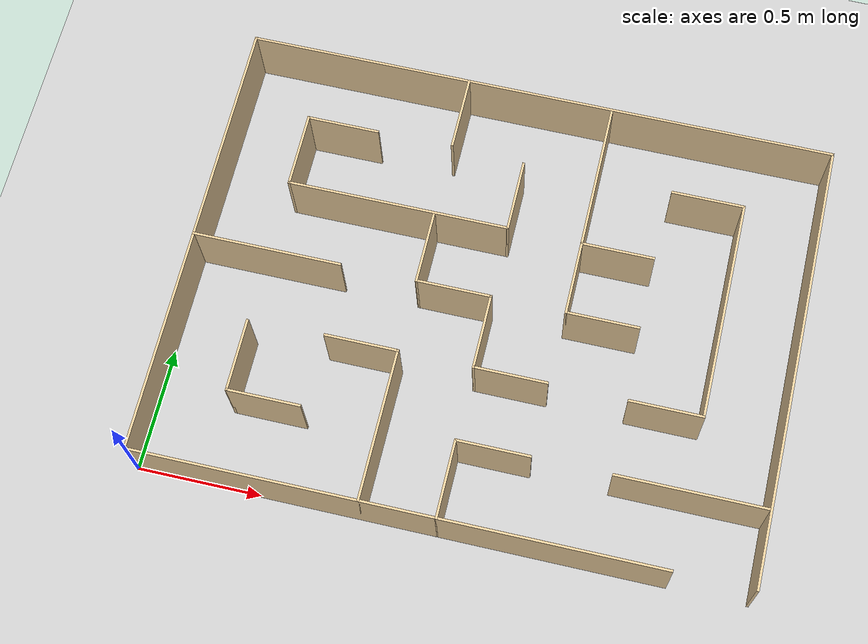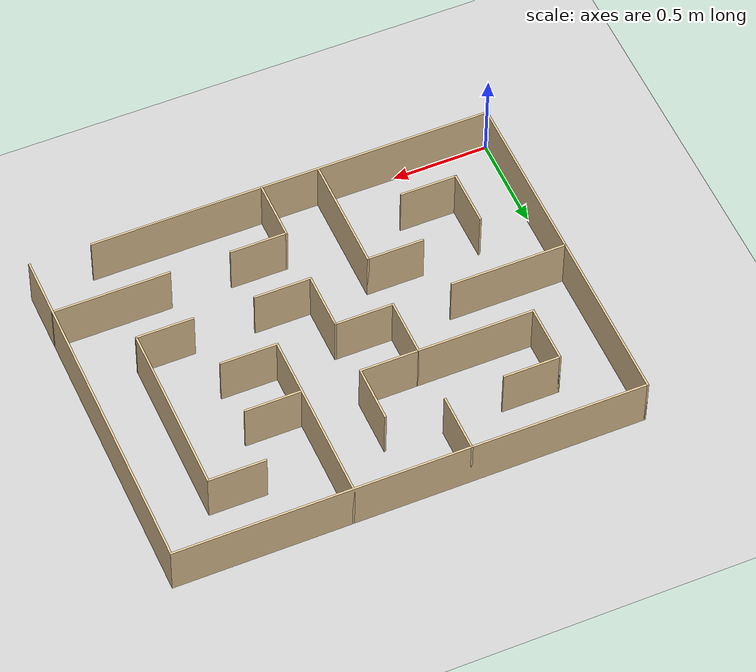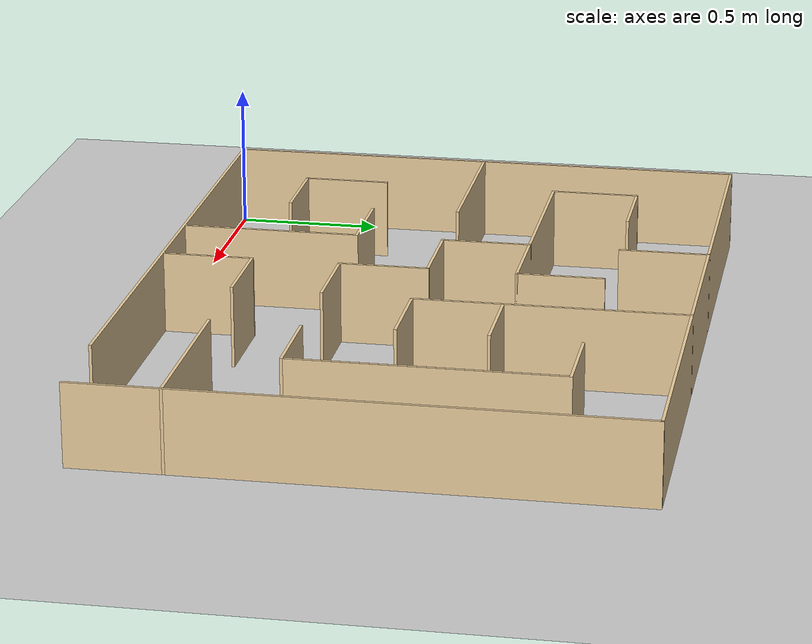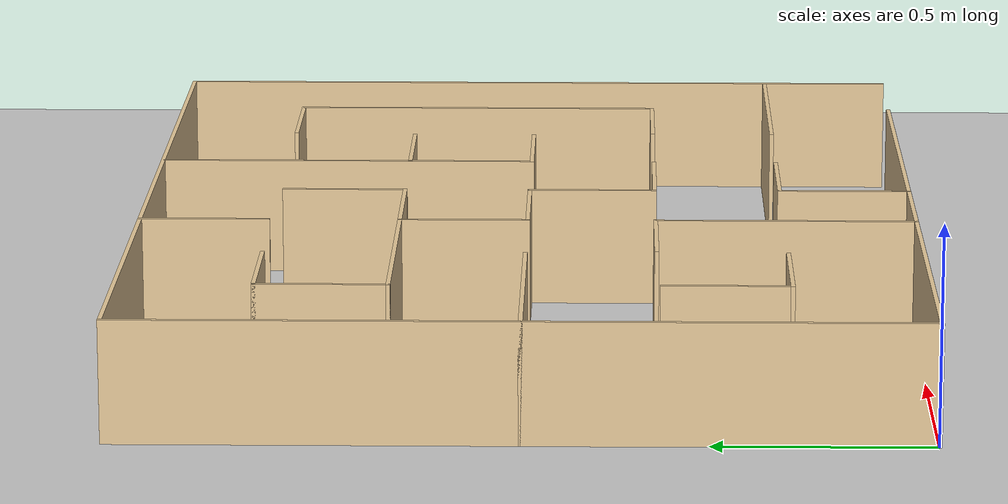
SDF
<?xml version="1.0" ?>
<sdf version="1.4">
  <world name="default">
    <scene>
      <ambient>0.5 0.5 0.5 1.0</ambient>
      <shadows>0</shadows>
    </scene>
    <include>
      <uri>model://ground_plane</uri>
    </include>
    <include>
      <uri>model://sun</uri>
    </include>

    <model name='newMap1'>
    <pose frame=''>1.21 0.91 0 0 -0 0</pose>
    <link name='Wall_0'>
      <collision name='Wall_0_Collision'>
        <geometry>
          <box>
            <size>0.31 0.01 0.28</size>
          </box>
        </geometry>
        <pose frame=''>0 0 0.14 0 -0 0</pose>
      </collision>
      <visual name='Wall_0_Visual'>
        <pose frame=''>0 0 0.14 0 -0 0</pose>
        <geometry>
          <box>
            <size>0.31 0.01 0.28</size>
          </box>
        </geometry>
        <material>
          <script>
            <uri>file://media/materials/scripts/gazebo.material</uri>
            <name>Gazebo/Grey</name>
          </script>
          <ambient>0.921569 0.807843 0.615686 1</ambient>
        </material>
        <meta>
          <layer>0</layer>
        </meta>
      </visual>
      <pose frame=''>-0.3 0.76 0 0 0 -1.5708</pose>
    </link>
    <link name='Wall_11'>
      <collision name='Wall_11_Collision'>
        <geometry>
          <box>
            <size>2.43 0.01 0.28</size>
          </box>
        </geometry>
        <pose frame=''>0 0 0.14 0 -0 0</pose>
      </collision>
      <visual name='Wall_11_Visual'>
        <pose frame=''>0 0 0.14 0 -0 0</pose>
        <geometry>
          <box>
            <size>2.43 0.01 0.28</size>
          </box>
        </geometry>
        <material>
          <script>
            <uri>file://media/materials/scripts/gazebo.material</uri>
            <name>Gazebo/Grey</name>
          </script>
          <ambient>0.921569 0.807843 0.615686 1</ambient>
        </material>
        <meta>
          <layer>0</layer>
        </meta>
      </visual>
      <pose frame=''>0 0.91 0 0 -0 0</pose>
    </link>
    <link name='Wall_13'>
      <collision name='Wall_13_Collision'>
        <geometry>
          <box>
            <size>1.83 0.01 0.28</size>
          </box>
        </geometry>
        <pose frame=''>0 0 0.14 0 -0 0</pose>
      </collision>
      <visual name='Wall_13_Visual'>
        <pose frame=''>0 0 0.14 0 -0 0</pose>
        <geometry>
          <box>
            <size>1.83 0.01 0.28</size>
          </box>
        </geometry>
        <material>
          <script>
            <uri>file://media/materials/scripts/gazebo.material</uri>
            <name>Gazebo/Grey</name>
          </script>
          <ambient>0.921569 0.807843 0.615686 1</ambient>
        </material>
        <meta>
          <layer>0</layer>
        </meta>
      </visual>
      <pose frame=''>-1.21 0 0 0 -0 1.5708</pose>
    </link>
    <link name='Wall_15'>
      <collision name='Wall_15_Collision'>
        <geometry>
          <box>
            <size>2.11 0.01 0.28</size>
          </box>
        </geometry>
        <pose frame=''>0 0 0.14 0 -0 0</pose>
      </collision>
      <visual name='Wall_15_Visual'>
        <pose frame=''>0 0 0.14 0 -0 0</pose>
        <geometry>
          <box>
            <size>2.11 0.01 0.28</size>
          </box>
        </geometry>
        <material>
          <script>
            <uri>file://media/materials/scripts/gazebo.material</uri>
            <name>Gazebo/Grey</name>
          </script>
          <ambient>0.921569 0.807843 0.615686 1</ambient>
        </material>
        <meta>
          <layer>0</layer>
        </meta>
      </visual>
      <pose frame=''>-0.16 -0.91 0 0 -0 0</pose>
    </link>
    <link name='Wall_17'>
      <collision name='Wall_17_Collision'>
        <geometry>
          <box>
            <size>0.3 0.01 0.28</size>
          </box>
        </geometry>
        <pose frame=''>0 0 0.14 0 -0 0</pose>
      </collision>
      <visual name='Wall_17_Visual'>
        <pose frame=''>0 0 0.14 0 -0 0</pose>
        <geometry>
          <box>
            <size>0.3 0.01 0.28</size>
          </box>
        </geometry>
        <material>
          <script>
            <uri>file://media/materials/scripts/gazebo.material</uri>
            <name>Gazebo/Grey</name>
          </script>
          <ambient>0.921569 0.807843 0.615686 1</ambient>
        </material>
        <meta>
          <layer>0</layer>
        </meta>
      </visual>
      <pose frame=''>-0.445 -0.3 0 0 -0 0</pose>
    </link>
    <link name='Wall_2'>
      <collision name='Wall_2_Collision'>
        <geometry>
          <box>
            <size>0.61 0.01 0.28</size>
          </box>
        </geometry>
        <pose frame=''>0 0 0.14 0 -0 0</pose>
      </collision>
      <visual name='Wall_2_Visual'>
        <pose frame=''>0 0 0.14 0 -0 0</pose>
        <geometry>
          <box>
            <size>0.61 0.01 0.28</size>
          </box>
        </geometry>
        <material>
          <script>
            <uri>file://media/materials/scripts/gazebo.material</uri>
            <name>Gazebo/Grey</name>
          </script>
          <ambient>0.921569 0.807843 0.615686 1</ambient>
        </material>
        <meta>
          <layer>0</layer>
        </meta>
      </visual>
      <pose frame=''>-0.91 0 0 0 -0 0</pose>
    </link>
    <link name='Wall_21'>
      <collision name='Wall_21_Collision'>
        <geometry>
          <box>
            <size>0.62 0.01 0.28</size>
          </box>
        </geometry>
        <pose frame=''>0 0 0.14 0 -0 0</pose>
      </collision>
      <visual name='Wall_21_Visual'>
        <pose frame=''>0 0 0.14 0 -0 0</pose>
        <geometry>
          <box>
            <size>0.62 0.01 0.28</size>
          </box>
        </geometry>
        <material>
          <script>
            <uri>file://media/materials/scripts/gazebo.material</uri>
            <name>Gazebo/Grey</name>
          </script>
          <ambient>0.921569 0.807843 0.615686 1</ambient>
        </material>
        <meta>
          <layer>0</layer>
        </meta>
      </visual>
      <pose frame=''>-0.3 -0.605 0 0 0 -1.5708</pose>
    </link>
    <link name='Wall_23'>
      <collision name='Wall_23_Collision'>
        <geometry>
          <box>
            <size>0.3 0.01 0.28</size>
          </box>
        </geometry>
        <pose frame=''>0 0 0.14 0 -0 0</pose>
      </collision>
      <visual name='Wall_23_Visual'>
        <pose frame=''>0 0 0.14 0 -0 0</pose>
        <geometry>
          <box>
            <size>0.3 0.01 0.28</size>
          </box>
        </geometry>
        <material>
          <script>
            <uri>file://media/materials/scripts/gazebo.material</uri>
            <name>Gazebo/Grey</name>
          </script>
          <ambient>0.921569 0.807843 0.615686 1</ambient>
        </material>
        <meta>
          <layer>0</layer>
        </meta>
      </visual>
      <pose frame=''>0.445 0 0 0 -0 0</pose>
    </link>
    <link name='Wall_25'>
      <collision name='Wall_25_Collision'>
        <geometry>
          <box>
            <size>0.3 0.01 0.28</size>
          </box>
        </geometry>
        <pose frame=''>0 0 0.14 0 -0 0</pose>
      </collision>
      <visual name='Wall_25_Visual'>
        <pose frame=''>0 0 0.14 0 -0 0</pose>
        <geometry>
          <box>
            <size>0.3 0.01 0.28</size>
          </box>
        </geometry>
        <material>
          <script>
            <uri>file://media/materials/scripts/gazebo.material</uri>
            <name>Gazebo/Grey</name>
          </script>
          <ambient>0.921569 0.807843 0.615686 1</ambient>
        </material>
        <meta>
          <layer>0</layer>
        </meta>
      </visual>
      <pose frame=''>0.445 0.3 0 0 -0 0</pose>
    </link>
    <link name='Wall_28'>
      <collision name='Wall_28_Collision'>
        <geometry>
          <box>
            <size>0.92 0.01 0.28</size>
          </box>
        </geometry>
        <pose frame=''>0 0 0.14 0 -0 0</pose>
      </collision>
      <visual name='Wall_28_Visual'>
        <pose frame=''>0 0 0.14 0 -0 0</pose>
        <geometry>
          <box>
            <size>0.92 0.01 0.28</size>
          </box>
        </geometry>
        <material>
          <script>
            <uri>file://media/materials/scripts/gazebo.material</uri>
            <name>Gazebo/Grey</name>
          </script>
          <ambient>0.921569 0.807843 0.615686 1</ambient>
        </material>
        <meta>
          <layer>0</layer>
        </meta>
      </visual>
      <pose frame=''>0.3 0.455 0 0 0 -1.5708</pose>
    </link>
    <link name='Wall_30'>
      <collision name='Wall_30_Collision'>
        <geometry>
          <box>
            <size>0.3 0.01 0.28</size>
          </box>
        </geometry>
        <pose frame=''>0 0 0.14 0 -0 0</pose>
      </collision>
      <visual name='Wall_30_Visual'>
        <pose frame=''>0 0 0.14 0 -0 0</pose>
        <geometry>
          <box>
            <size>0.3 0.01 0.28</size>
          </box>
        </geometry>
        <material>
          <script>
            <uri>file://media/materials/scripts/gazebo.material</uri>
            <name>Gazebo/Grey</name>
          </script>
          <ambient>0.921569 0.807843 0.615686 1</ambient>
        </material>
        <meta>
          <layer>0</layer>
        </meta>
      </visual>
      <pose frame=''>0.755 -0.3 0 0 -0 3.14159</pose>
    </link>
    <link name='Wall_32'>
      <collision name='Wall_32_Collision'>
        <geometry>
          <box>
            <size>0.91 0.01 0.28</size>
          </box>
        </geometry>
        <pose frame=''>0 0 0.14 0 -0 0</pose>
      </collision>
      <visual name='Wall_32_Visual'>
        <pose frame=''>0 0 0.14 0 -0 0</pose>
        <geometry>
          <box>
            <size>0.91 0.01 0.28</size>
          </box>
        </geometry>
        <material>
          <script>
            <uri>file://media/materials/scripts/gazebo.material</uri>
            <name>Gazebo/Grey</name>
          </script>
          <ambient>0.921569 0.807843 0.615686 1</ambient>
        </material>
        <meta>
          <layer>0</layer>
        </meta>
      </visual>
      <pose frame=''>0.9 0.15 0 0 0 -1.5708</pose>
    </link>
    <link name='Wall_34'>
      <collision name='Wall_34_Collision'>
        <geometry>
          <box>
            <size>0.3 0.01 0.28</size>
          </box>
        </geometry>
        <pose frame=''>0 0 0.14 0 -0 0</pose>
      </collision>
      <visual name='Wall_34_Visual'>
        <pose frame=''>0 0 0.14 0 -0 0</pose>
        <geometry>
          <box>
            <size>0.3 0.01 0.28</size>
          </box>
        </geometry>
        <material>
          <script>
            <uri>file://media/materials/scripts/gazebo.material</uri>
            <name>Gazebo/Grey</name>
          </script>
          <ambient>0.921569 0.807843 0.615686 1</ambient>
        </material>
        <meta>
          <layer>0</layer>
        </meta>
      </visual>
      <pose frame=''>0.755 0.6 0 0 -0 0</pose>
    </link>
    <link name='Wall_36'>
      <collision name='Wall_36_Collision'>
        <geometry>
          <box>
            <size>0.61 0.01 0.28</size>
          </box>
        </geometry>
        <pose frame=''>0 0 0.14 0 -0 0</pose>
      </collision>
      <visual name='Wall_36_Visual'>
        <pose frame=''>0 0 0.14 0 -0 0</pose>
        <geometry>
          <box>
            <size>0.61 0.01 0.28</size>
          </box>
        </geometry>
        <material>
          <script>
            <uri>file://media/materials/scripts/gazebo.material</uri>
            <name>Gazebo/Grey</name>
          </script>
          <ambient>0.921569 0.807843 0.615686 1</ambient>
        </material>
        <meta>
          <layer>0</layer>
        </meta>
      </visual>
      <pose frame=''>0.91 -0.6 0 0 -0 0</pose>
    </link>
    <link name='Wall_40'>
      <collision name='Wall_40_Collision'>
        <geometry>
          <box>
            <size>0.3 0.01 0.28</size>
          </box>
        </geometry>
        <pose frame=''>0 0 0.14 0 -0 0</pose>
      </collision>
      <visual name='Wall_40_Visual'>
        <pose frame=''>0 0 0.14 0 -0 0</pose>
        <geometry>
          <box>
            <size>0.3 0.01 0.28</size>
          </box>
        </geometry>
        <material>
          <script>
            <uri>file://media/materials/scripts/gazebo.material</uri>
            <name>Gazebo/Grey</name>
          </script>
          <ambient>0.921569 0.807843 0.615686 1</ambient>
        </material>
        <meta>
          <layer>0</layer>
        </meta>
      </visual>
      <pose frame=''>0.145 -0.6 0 0 -0 0</pose>
    </link>
    <link name='Wall_42'>
      <collision name='Wall_42_Collision'>
        <geometry>
          <box>
            <size>0.32 0.01 0.28</size>
          </box>
        </geometry>
        <pose frame=''>0 0 0.14 0 -0 0</pose>
      </collision>
      <visual name='Wall_42_Visual'>
        <pose frame=''>0 0 0.14 0 -0 0</pose>
        <geometry>
          <box>
            <size>0.32 0.01 0.28</size>
          </box>
        </geometry>
        <material>
          <script>
            <uri>file://media/materials/scripts/gazebo.material</uri>
            <name>Gazebo/Grey</name>
          </script>
          <ambient>0.921569 0.807843 0.615686 1</ambient>
        </material>
        <meta>
          <layer>0</layer>
        </meta>
      </visual>
      <pose frame=''>0 -0.755 0 0 -0 1.5708</pose>
    </link>
    <link name='Wall_44'>
      <collision name='Wall_44_Collision'>
        <geometry>
          <box>
            <size>0.3 0.01 0.28</size>
          </box>
        </geometry>
        <pose frame=''>0 0 0.14 0 -0 0</pose>
      </collision>
      <visual name='Wall_44_Visual'>
        <pose frame=''>0 0 0.14 0 -0 0</pose>
        <geometry>
          <box>
            <size>0.3 0.01 0.28</size>
          </box>
        </geometry>
        <material>
          <script>
            <uri>file://media/materials/scripts/gazebo.material</uri>
            <name>Gazebo/Grey</name>
          </script>
          <ambient>0.921569 0.807843 0.615686 1</ambient>
        </material>
        <meta>
          <layer>0</layer>
        </meta>
      </visual>
      <pose frame=''>0.145 -0.3 0 0 -0 0</pose>
    </link>
    <link name='Wall_46'>
      <collision name='Wall_46_Collision'>
        <geometry>
          <box>
            <size>0.31 0.01 0.28</size>
          </box>
        </geometry>
        <pose frame=''>0 0 0.14 0 -0 0</pose>
      </collision>
      <visual name='Wall_46_Visual'>
        <pose frame=''>0 0 0.14 0 -0 0</pose>
        <geometry>
          <box>
            <size>0.31 0.01 0.28</size>
          </box>
        </geometry>
        <material>
          <script>
            <uri>file://media/materials/scripts/gazebo.material</uri>
            <name>Gazebo/Grey</name>
          </script>
          <ambient>0.921569 0.807843 0.615686 1</ambient>
        </material>
        <meta>
          <layer>0</layer>
        </meta>
      </visual>
      <pose frame=''>0 -0.15 0 0 0 -1.5708</pose>
    </link>
    <link name='Wall_48'>
      <collision name='Wall_48_Collision'>
        <geometry>
          <box>
            <size>0.31 0.01 0.28</size>
          </box>
        </geometry>
        <pose frame=''>0 0 0.14 0 -0 0</pose>
      </collision>
      <visual name='Wall_48_Visual'>
        <pose frame=''>0 0 0.14 0 -0 0</pose>
        <geometry>
          <box>
            <size>0.31 0.01 0.28</size>
          </box>
        </geometry>
        <material>
          <script>
            <uri>file://media/materials/scripts/gazebo.material</uri>
            <name>Gazebo/Grey</name>
          </script>
          <ambient>0.921569 0.807843 0.615686 1</ambient>
        </material>
        <meta>
          <layer>0</layer>
        </meta>
      </visual>
      <pose frame=''>-0.15 0 0 0 -0 0</pose>
    </link>
    <link name='Wall_5'>
      <collision name='Wall_5_Collision'>
        <geometry>
          <box>
            <size>0.3 0.01 0.28</size>
          </box>
        </geometry>
        <pose frame=''>0 0 0.14 0 -0 0</pose>
      </collision>
      <visual name='Wall_5_Visual'>
        <pose frame=''>0 0 0.14 0 -0 0</pose>
        <geometry>
          <box>
            <size>0.3 0.01 0.28</size>
          </box>
        </geometry>
        <material>
          <script>
            <uri>file://media/materials/scripts/gazebo.material</uri>
            <name>Gazebo/Grey</name>
          </script>
          <ambient>0.921569 0.807843 0.615686 1</ambient>
        </material>
        <meta>
          <layer>0</layer>
        </meta>
      </visual>
      <pose frame=''>-0.9 -0.455 0 0 -0 1.5708</pose>
    </link>
    <link name='Wall_50'>
      <collision name='Wall_50_Collision'>
        <geometry>
          <box>
            <size>0.31 0.01 0.28</size>
          </box>
        </geometry>
        <pose frame=''>0 0 0.14 0 -0 0</pose>
      </collision>
      <visual name='Wall_50_Visual'>
        <pose frame=''>0 0 0.14 0 -0 0</pose>
        <geometry>
          <box>
            <size>0.31 0.01 0.28</size>
          </box>
        </geometry>
        <material>
          <script>
            <uri>file://media/materials/scripts/gazebo.material</uri>
            <name>Gazebo/Grey</name>
          </script>
          <ambient>0.921569 0.807843 0.615686 1</ambient>
        </material>
        <meta>
          <layer>0</layer>
        </meta>
      </visual>
      <pose frame=''>-0.3 0.15 0 0 0 -1.5708</pose>
    </link>
    <link name='Wall_52'>
      <collision name='Wall_52_Collision'>
        <geometry>
          <box>
            <size>0.3 0.01 0.28</size>
          </box>
        </geometry>
        <pose frame=''>0 0 0.14 0 -0 0</pose>
      </collision>
      <visual name='Wall_52_Visual'>
        <pose frame=''>0 0 0.14 0 -0 0</pose>
        <geometry>
          <box>
            <size>0.3 0.01 0.28</size>
          </box>
        </geometry>
        <material>
          <script>
            <uri>file://media/materials/scripts/gazebo.material</uri>
            <name>Gazebo/Grey</name>
          </script>
          <ambient>0.921569 0.807843 0.615686 1</ambient>
        </material>
        <meta>
          <layer>0</layer>
        </meta>
      </visual>
      <pose frame=''>0 0.445 0 0 -0 1.5708</pose>
    </link>
    <link name='Wall_54'>
      <collision name='Wall_54_Collision'>
        <geometry>
          <box>
            <size>0.91 0.01 0.28</size>
          </box>
        </geometry>
        <pose frame=''>0 0 0.14 0 -0 0</pose>
      </collision>
      <visual name='Wall_54_Visual'>
        <pose frame=''>0 0 0.14 0 -0 0</pose>
        <geometry>
          <box>
            <size>0.91 0.01 0.28</size>
          </box>
        </geometry>
        <material>
          <script>
            <uri>file://media/materials/scripts/gazebo.material</uri>
            <name>Gazebo/Grey</name>
          </script>
          <ambient>0.921569 0.807843 0.615686 1</ambient>
        </material>
        <meta>
          <layer>0</layer>
        </meta>
      </visual>
      <pose frame=''>-0.45 0.3 0 0 -0 0</pose>
    </link>
    <link name='Wall_56'>
      <collision name='Wall_56_Collision'>
        <geometry>
          <box>
            <size>0.31 0.01 0.28</size>
          </box>
        </geometry>
        <pose frame=''>0 0 0.14 0 -0 0</pose>
      </collision>
      <visual name='Wall_56_Visual'>
        <pose frame=''>0 0 0.14 0 -0 0</pose>
        <geometry>
          <box>
            <size>0.31 0.01 0.28</size>
          </box>
        </geometry>
        <material>
          <script>
            <uri>file://media/materials/scripts/gazebo.material</uri>
            <name>Gazebo/Grey</name>
          </script>
          <ambient>0.921569 0.807843 0.615686 1</ambient>
        </material>
        <meta>
          <layer>0</layer>
        </meta>
      </visual>
      <pose frame=''>-0.9 0.45 0 0 -0 1.5708</pose>
    </link>
    <link name='Wall_58'>
      <collision name='Wall_58_Collision'>
        <geometry>
          <box>
            <size>0.3 0.01 0.28</size>
          </box>
        </geometry>
        <pose frame=''>0 0 0.14 0 -0 0</pose>
      </collision>
      <visual name='Wall_58_Visual'>
        <pose frame=''>0 0 0.14 0 -0 0</pose>
        <geometry>
          <box>
            <size>0.3 0.01 0.28</size>
          </box>
        </geometry>
        <material>
          <script>
            <uri>file://media/materials/scripts/gazebo.material</uri>
            <name>Gazebo/Grey</name>
          </script>
          <ambient>0.921569 0.807843 0.615686 1</ambient>
        </material>
        <meta>
          <layer>0</layer>
        </meta>
      </visual>
      <pose frame=''>-0.755 0.6 0 0 -0 0</pose>
    </link>
    <link name='Wall_7'>
      <collision name='Wall_7_Collision'>
        <geometry>
          <box>
            <size>0.3 0.01 0.28</size>
          </box>
        </geometry>
        <pose frame=''>0 0 0.14 0 -0 0</pose>
      </collision>
      <visual name='Wall_7_Visual'>
        <pose frame=''>0 0 0.14 0 -0 0</pose>
        <geometry>
          <box>
            <size>0.3 0.01 0.28</size>
          </box>
        </geometry>
        <material>
          <script>
            <uri>file://media/materials/scripts/gazebo.material</uri>
            <name>Gazebo/Grey</name>
          </script>
          <ambient>0.921569 0.807843 0.615686 1</ambient>
        </material>
        <meta>
          <layer>0</layer>
        </meta>
      </visual>
      <pose frame=''>-0.755 -0.6 0 0 -0 0</pose>
    </link>
    <link name='Wall_9'>
      <collision name='Wall_9_Collision'>
        <geometry>
          <box>
            <size>1.83 0.01 0.28</size>
          </box>
        </geometry>
        <pose frame=''>0 0 0.14 0 -0 0</pose>
      </collision>
      <visual name='Wall_9_Visual'>
        <pose frame=''>0 0 0.14 0 -0 0</pose>
        <geometry>
          <box>
            <size>1.83 0.01 0.28</size>
          </box>
        </geometry>
        <material>
          <script>
            <uri>file://media/materials/scripts/gazebo.material</uri>
            <name>Gazebo/Grey</name>
          </script>
          <ambient>0.921569 0.807843 0.615686 1</ambient>
        </material>
        <meta>
          <layer>0</layer>
        </meta>
      </visual>
      <pose frame=''>1.21 0 0 0 0 -1.5708</pose>
    </link>
    <static>1</static>
  </model>

  </world>
</sdf>
